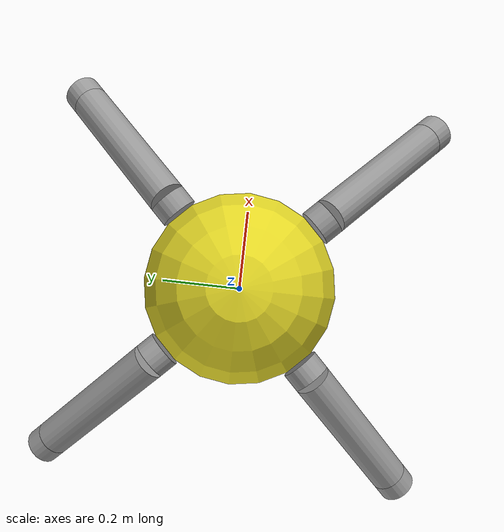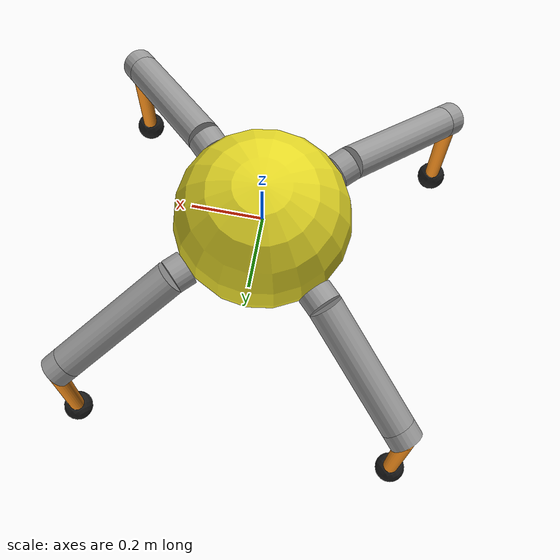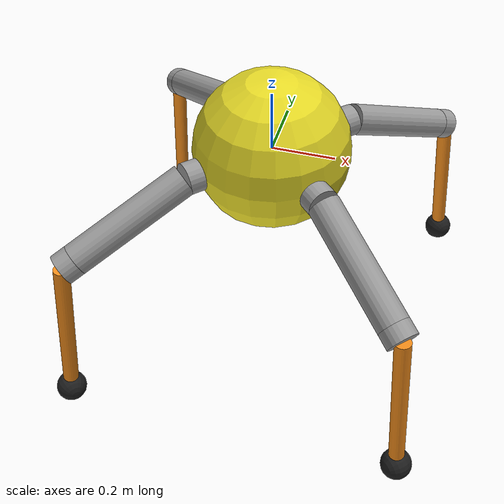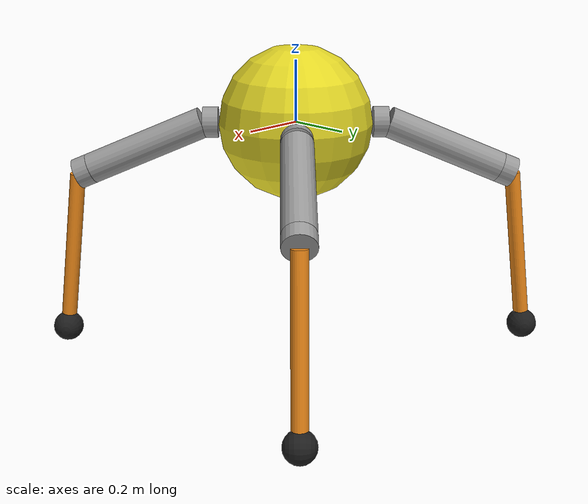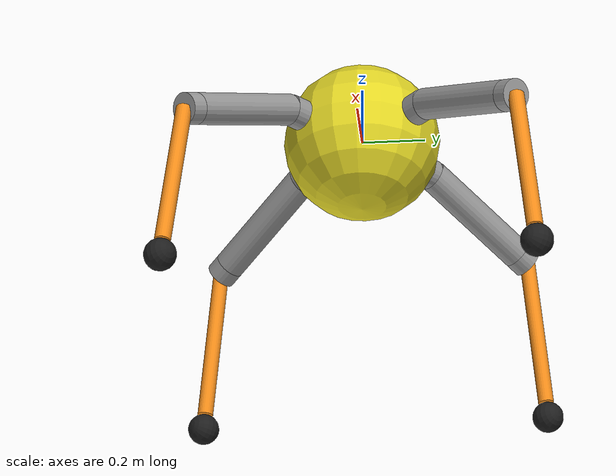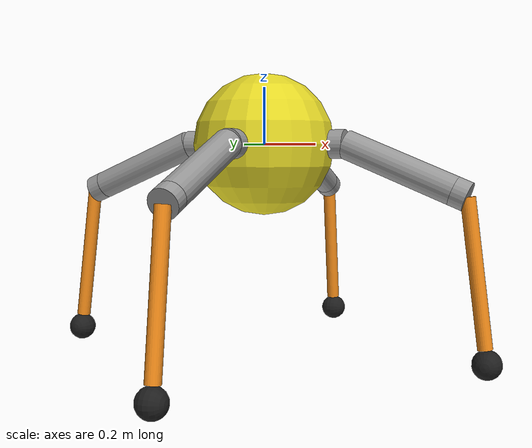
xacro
<?xml version="1.0"?>
<robot name="crawler"
    xmlns:xacro="http://www.ros.org/wiki/xacro">

    <!-- Constants for robot dimensions -->
    <xacro:property name="R_body" value="0.25"/>
    <xacro:property name="M_body" value="5"/>

    <xacro:property name="R_up_leg" value="0.05"/>
    <xacro:property name="L_up_leg" value="0.40"/>
    <xacro:property name="L_up_con_leg" value="0.05"/>
    <xacro:property name="M_up_leg" value="1.5"/>
    <xacro:property name="M_up_con_leg" value="0.25"/>

    <xacro:property name="R_down_leg" value="0.025"/>
    <xacro:property name="L_down_leg" value="0.5"/>
    <xacro:property name="M_down_leg" value="1"/>

    <xacro:property name="R_foot" value="0.05"/>
    <xacro:property name="M_foot" value="0.5"/>

    <xacro:macro name="joint1_property">
        <axis xyz="0 0 1"/>
        <dynamics damping="0.7" friction="0.0"/>
        <limit effort="100.0" velocity="10.0" lower="${-pi/4}" upper="${pi/4}"/>
    </xacro:macro>

    <xacro:macro name="joint2_property">
        <axis xyz="0 0 1"/>
        <dynamics damping="0.7" friction="0.0"/>
        <limit effort="100.0" velocity="10.0" lower="${-pi/4}" upper="${pi/4}"/>
    </xacro:macro>

    <xacro:macro name="joint3_property">
        <axis xyz="1 0 0"/>
        <dynamics damping="0.7" friction="0.0"/>
        <limit effort="100.0" velocity="10.0" lower="${-pi/2}" upper="${pi/2}"/>
    </xacro:macro>

    <xacro:macro name="joint4_property">
        <axis xyz="0 0 1"/>
        <dynamics damping="0.7" friction="0.0"/>
        <limit effort="100.0" velocity="10.0" lower="${-pi/3}" upper="${pi/3}"/>
    </xacro:macro>

    <xacro:macro name="leg_friction_property">
        <collision>
            <surface>
                <friction>
                    <ode>
                        <mu>Inf</mu>
                        <mu2>Inf</mu2>
                    </ode>
                </friction>
            </surface>
        </collision>
    </xacro:macro>

    <xacro:macro name="foot_property">
        <collision>
            <surface>
                <contact>
                    <ode>
                        <kp>1e9</kp>
                        <kd>1.00</kd>
                        <min_depth>0.01</min_depth>
                    </ode>
                </contact>
                <friction>
                    <ode>
                        <mu>10</mu>
                        <mu2>10</mu2>
                    </ode>
                </friction>
            </surface>
        </collision>
    </xacro:macro>

    <xacro:include filename="$(find crawler)/urdf/leg.xacro" />
    <xacro:include filename="$(find crawler)/urdf/crawler.gazebo" />

    <link name="dummy"/>
    <joint name="dummy_joint" type="fixed">
        <parent link="dummy"/>
        <child link="base"/>
    </joint>
    <link name="base">
        <inertial>
            <mass value="${M_body}" />
            <inertia ixx="${2/5 * M_body * R_body * R_body}" ixy="0" ixz="0" iyy="${2/5 * M_body * R_body * R_body}" iyz="0" izz="${2/5 * M_body * R_body * R_body}" />
        </inertial>
        <visual>
            <geometry>
                <sphere radius="${R_body}"/>
            </geometry>
        </visual>
        <collision>
            <geometry>
                <sphere radius="${R_body}"/>
            </geometry>
        </collision>
    </link>
    <gazebo reference="base">
        <material>Gazebo/Yellow</material>
    </gazebo>

    <joint name="camera_joint" type="fixed">
        <parent link="base"/>
        <child link="camera_link"/>
        <origin xyz="0 0 ${R_body}" rpy="0 0 0"/>
    </joint>
    <link name="camera_link"/>
    <xacro:include filename="$(find crawler)/urdf/camera.gazebo" />

    <joint name="joint1_LF" type="revolute">
        <parent link="base"/>
        <child link="leg1_LF"/>
        <origin xyz="${R_body * cos(pi/4)} ${R_body * cos(pi/4)} 0" rpy="0 0 ${pi/4}"/>
        <xacro:joint1_property/>
    </joint>
    <xacro:leg suffix="LF"/>

    <joint name="joint1_LB" type="revolute">
        <parent link="base"/>
        <child link="leg1_LB"/>
        <origin xyz="${-R_body * cos(pi/4)} ${R_body * cos(pi/4)} 0" rpy="0 0 ${pi * 3/4}"/>
        <xacro:joint1_property/>
    </joint>
    <xacro:leg suffix="LB"/>

    <joint name="joint1_RF" type="revolute">
        <parent link="base"/>
        <child link="leg1_RF"/>
        <origin xyz="${R_body * cos(pi/4)} ${-R_body * cos(pi/4)} 0" rpy="0 0 ${-pi/4}"/>
        <xacro:joint1_property/>
    </joint>
    <xacro:leg suffix="RF"/>

    <joint name="joint1_RB" type="revolute">
        <parent link="base"/>
        <child link="leg1_RB"/>
        <origin xyz="${-R_body * cos(pi/4)} ${-R_body * cos(pi/4)} 0" rpy="0 0 ${-pi *3/4}"/>
        <xacro:joint1_property/>
    </joint>
    <xacro:leg suffix="RB"/>

</robot>

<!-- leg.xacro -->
<robot name="crawler"
    xmlns:xacro="http://www.ros.org/wiki/xacro">

    <xacro:macro name="leg" params="suffix">
        <transmission name="tran1_${suffix}">
            <type>transmission_interface/SimpleTransmission</type>
            <joint name="joint1_${suffix}">
                <hardwareInterface>hardware_interface/EffortJointInterface</hardwareInterface>
            </joint>
            <actuator name="act1_${suffix}">
                <hardwareInterface>hardware_interface/EffortJointInterface</hardwareInterface>
                <mechanicalReduction>1</mechanicalReduction>
            </actuator>
        </transmission>

        <link name="leg1_${suffix}">
            <inertial>
                <origin xyz="${L_up_con_leg/2} 0 0" rpy="0 ${pi/2} 0"/>
                <mass value="${M_up_con_leg}" />
                <inertia ixx="${M_up_con_leg * (1/12 * L_up_con_leg * L_up_con_leg + 1/4 * R_up_leg * R_up_leg)}" ixy="0" ixz="0" iyy="${M_up_con_leg * (1/12 * L_up_con_leg * L_up_con_leg + 1/4 * R_up_leg * R_up_leg)}" iyz="0" izz="${1/2 * M_up_con_leg * R_up_leg * R_up_leg}" />
            </inertial>
            <visual>
                <origin xyz="${L_up_con_leg/2} 0 0" rpy="0 ${pi/2} 0"/>
                <geometry>
                    <cylinder length="${L_up_con_leg}" radius="${R_up_leg}"/>
                </geometry>
            </visual>
            <collision>
                <origin xyz="${L_up_con_leg/2} 0 0" rpy="0 ${pi/2} 0"/>
                <geometry>
                    <cylinder length="${L_up_con_leg}" radius="${R_up_leg}"/>
                </geometry>
            </collision>
        </link>

        <gazebo reference="leg1_${suffix}">
            <xacro:leg_friction_property/>
            <material>Gazebo/Grey</material>
        </gazebo>

        <joint name="joint2_${suffix}" type="revolute">
            <parent link="leg1_${suffix}"/>
            <child link="leg2_${suffix}"/>
            <origin xyz="${L_up_con_leg} 0 0" rpy="${-pi/2} ${pi/8} 0"/>
            <xacro:joint2_property/>
        </joint>

        <transmission name="tran2_${suffix}">
            <type>transmission_interface/SimpleTransmission</type>
            <joint name="joint2_${suffix}">
                <hardwareInterface>hardware_interface/EffortJointInterface</hardwareInterface>
            </joint>
            <actuator name="act2_${suffix}">
                <hardwareInterface>hardware_interface/EffortJointInterface</hardwareInterface>
                <mechanicalReduction>1</mechanicalReduction>
            </actuator>
        </transmission>

        <link name="leg2_${suffix}">
            <inertial>
                <origin xyz="${L_up_leg/2} 0 0" rpy="0 ${pi/2} 0"/>
                <mass value="${M_body}" />
                <inertia ixx="${M_up_leg * (1/12 * L_up_leg * L_up_leg + 1/4 * R_up_leg * R_up_leg)}" ixy="0" ixz="0" iyy="${M_up_leg * (1/12 * L_up_leg * L_up_leg + 1/4 * R_up_leg * R_up_leg)}" iyz="0" izz="${1/2 * M_up_leg * R_up_leg * R_up_leg}" />
            </inertial>
            <visual>
                <origin xyz="${L_up_leg/2} 0 0" rpy="0 ${pi/2} 0"/>
                <geometry>
                    <cylinder length="${L_up_leg}" radius="${R_up_leg}"/>
                </geometry>
            </visual>
            <collision>
                <origin xyz="${L_up_leg/2} 0 0" rpy="0 ${pi/2} 0"/>
                <geometry>
                    <cylinder length="${L_up_leg}" radius="${R_up_leg}"/>
                </geometry>
            </collision>
        </link>
        <gazebo reference="leg2_${suffix}">
            <xacro:leg_friction_property/>
            <material>Gazebo/Grey</material>
        </gazebo>

        <joint name="joint3_${suffix}" type="revolute">
            <parent link="leg2_${suffix}"/>
            <child link="leg3_${suffix}"/>
            <origin xyz="${L_up_leg} 0 0" rpy="0 0 0"/>
            <xacro:joint3_property/>
        </joint>

        <transmission name="tran3_${suffix}">
            <type>transmission_interface/SimpleTransmission</type>
            <joint name="joint3_${suffix}">
                <hardwareInterface>hardware_interface/EffortJointInterface</hardwareInterface>
            </joint>
            <actuator name="act3_${suffix}">
                <hardwareInterface>hardware_interface/EffortJointInterface</hardwareInterface>
                <mechanicalReduction>1</mechanicalReduction>
            </actuator>
        </transmission>

        <link name="leg3_${suffix}">
            <inertial>
                <origin xyz="${L_up_con_leg/2} 0 0" rpy="0 ${pi/2} 0"/>
                <mass value="${M_up_con_leg}" />
                <inertia ixx="${M_up_con_leg * (1/12 * L_up_con_leg * L_up_con_leg + 1/4 * R_up_leg * R_up_leg)}" ixy="0" ixz="0" iyy="${M_up_con_leg * (1/12 * L_up_con_leg * L_up_con_leg + 1/4 * R_up_leg * R_up_leg)}" iyz="0" izz="${1/2 * M_up_con_leg * R_up_leg * R_up_leg}" />
            </inertial>
            <visual>
                <origin xyz="${L_up_con_leg/2} 0 0" rpy="0 ${pi/2} 0"/>
                <geometry>
                    <cylinder length="${L_up_con_leg}" radius="${R_up_leg}"/>
                </geometry>
            </visual>
            <collision>
                <origin xyz="${L_up_con_leg} 0 0" rpy="0 0 0"/>
                <geometry>
                    <sphere radius="${L_up_con_leg}"/>
                </geometry>
            </collision>
        </link>
        <gazebo reference="leg3_${suffix}">
            <xacro:leg_friction_property/>
            <material>Gazebo/Grey</material>
            <sensor name="main_bumper" type="contact">
                <alwaysOn>true</alwaysOn>
                <update_rate>20</update_rate>
                <contact>
                    <collision>leg3_${suffix}_collision</collision>
                </contact>
                <plugin name="gazebo_ros_bumper_controller" filename="libgazebo_ros_bumper.so">
                    <bumperTopicName>contact_msgs</bumperTopicName>
                    <frameName>knee_${suffix}</frameName>
                </plugin>
            </sensor>
        </gazebo>

        <joint name="joint4_${suffix}" type="revolute">
            <parent link="leg3_${suffix}"/>
            <child link="leg4_${suffix}"/>
            <origin xyz="${L_up_con_leg} 0 0" rpy="0 0 ${pi/3}"/>
            <xacro:joint4_property/>
        </joint>

        <transmission name="tran4_${suffix}">
            <type>transmission_interface/SimpleTransmission</type>
            <joint name="joint4_${suffix}">
                <hardwareInterface>hardware_interface/EffortJointInterface</hardwareInterface>
            </joint>
            <actuator name="act4_${suffix}">
                <hardwareInterface>hardware_interface/EffortJointInterface</hardwareInterface>
                <mechanicalReduction>1</mechanicalReduction>
            </actuator>
        </transmission>

        <link name="leg4_${suffix}">
            <inertial>
                <origin xyz="${L_down_leg/2} 0 0" rpy="0 ${pi/2} 0"/>
                <mass value="${M_body}" />
                <inertia ixx="${M_down_leg * (1/12 * L_down_leg * L_down_leg + 1/4 * R_down_leg * R_down_leg)}" ixy="0" ixz="0" iyy="${M_down_leg * (1/12 * L_down_leg * L_down_leg + 1/4 * R_down_leg * R_down_leg)}" iyz="0" izz="${1/2 * M_down_leg * R_down_leg * R_down_leg}" />
            </inertial>
            <visual>
                <origin xyz="${L_down_leg/2} 0 0" rpy="0 ${pi/2} 0"/>
                <geometry>
                    <cylinder length="${L_down_leg}" radius="${R_down_leg}"/>
                </geometry>
            </visual>
            <collision>
                <origin xyz="${L_down_leg/2} 0 0" rpy="0 ${pi/2} 0"/>
                <geometry>
                    <cylinder length="${L_down_leg}" radius="${R_down_leg}"/>
                </geometry>
            </collision>
        </link>
        <gazebo reference="leg4_${suffix}">
            <xacro:leg_friction_property/>
            <material>Gazebo/Orange</material>
        </gazebo>

        <joint name="end_joint_${suffix}" type="fixed">
            <parent link="leg4_${suffix}"/>
            <child link="foot_${suffix}"/>
            <origin xyz="${L_down_leg + R_foot} 0 0" rpy="0 0 0"/>
        </joint>

        <link name="foot_${suffix}">
            <inertial>
                <origin xyz="0 0 0" rpy="0 0 0"/>
                <mass value="${M_body}" />
                <inertia ixx="${2/5 * M_foot * R_foot * R_foot}" ixy="0" ixz="0" iyy="${2/5 * M_foot * R_foot * R_foot}" iyz="0" izz="${2/5 * M_foot * R_foot * R_foot}" />
            </inertial>
            <visual>
                <origin xyz="0 0 0" rpy="0 0 0"/>
                <geometry>
                    <sphere radius="${R_foot}"/>
                </geometry>
            </visual>
            <collision>
                <origin xyz="0 0 0" rpy="0 0 0"/>
                <geometry>
                    <sphere radius="${R_foot}"/>
                </geometry>
            </collision>
        </link>

        <gazebo reference="foot_${suffix}">
            <xacro:foot_property/>
            <material>Gazebo/Black</material>
        </gazebo>

    </xacro:macro>
</robot>
